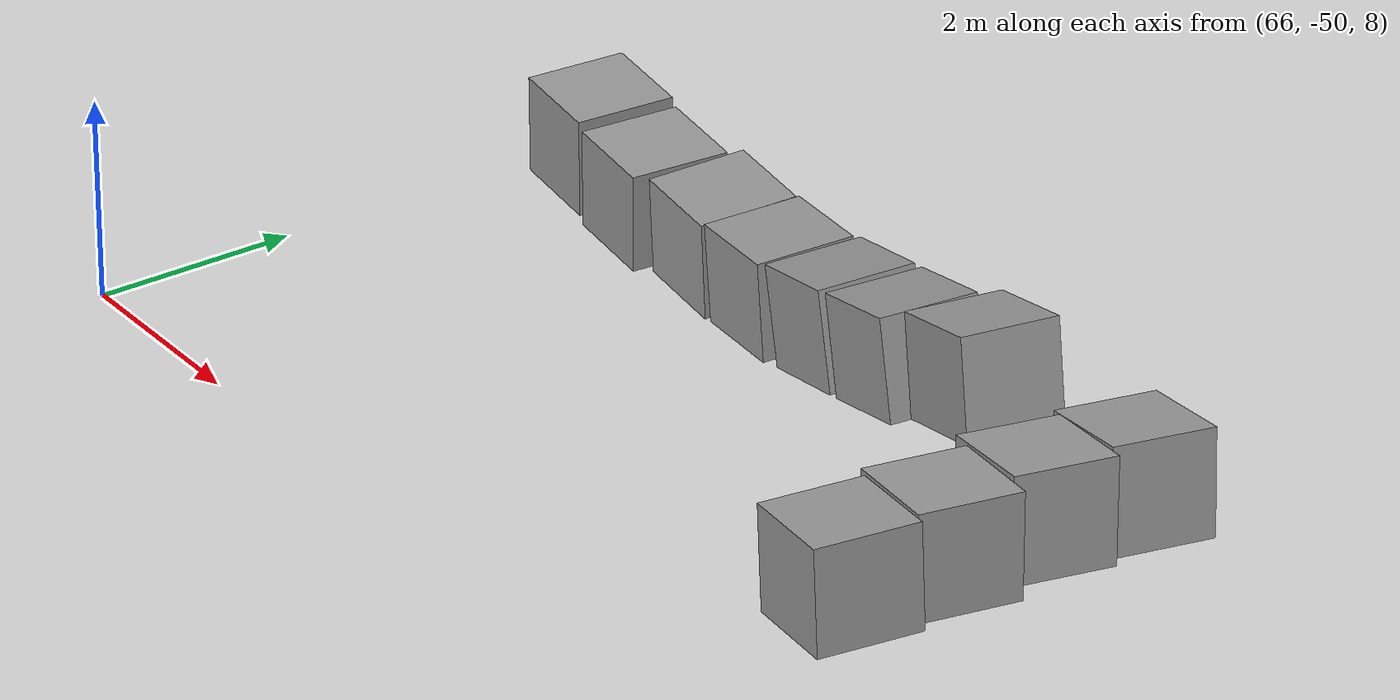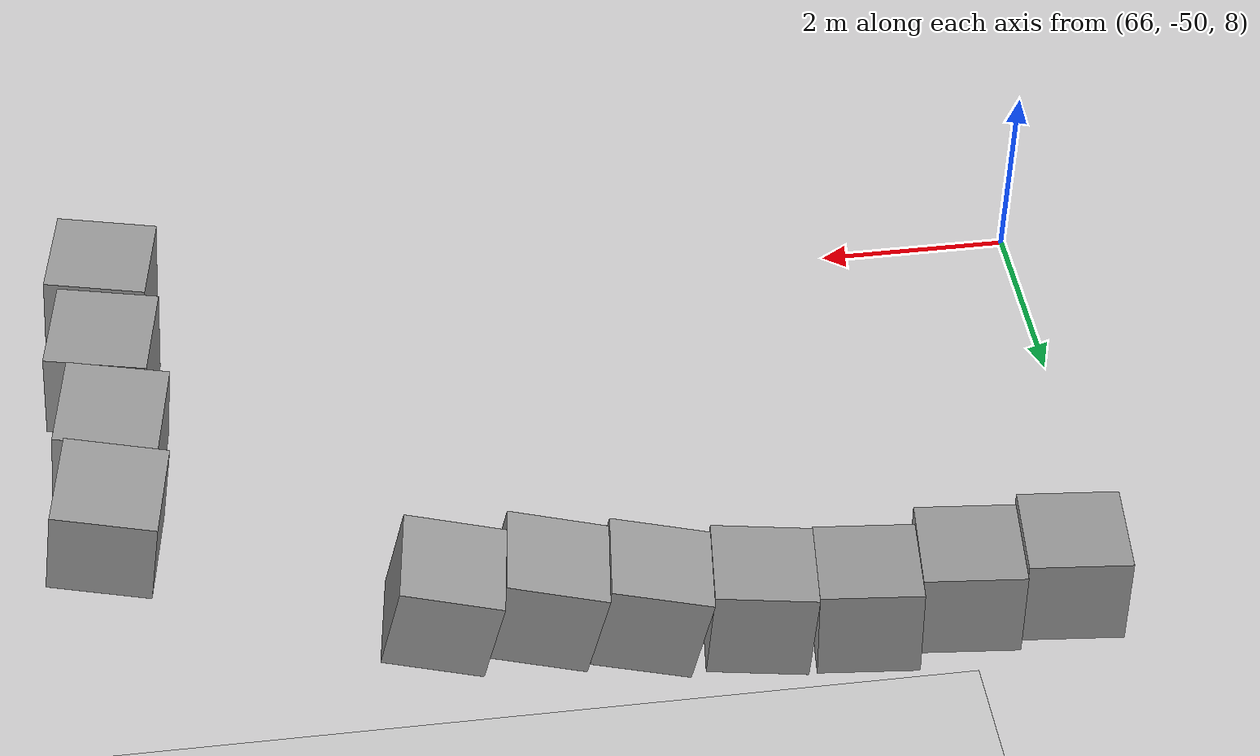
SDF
<sdf version="1.7">
 <world name="default">
  <model name="ground_plane">
   <static>1</static>
   <link name="link">
    <collision name="collision">
     <geometry><plane><normal>0 0 1</normal><size>100 100</size></plane></geometry>
     <surface>
      <contact><collide_bitmask>65535</collide_bitmask></contact>
      <friction><ode><mu>100</mu><mu2>50</mu2></ode></friction>
     </surface>
    </collision>
    <visual name="visual">
     <cast_shadows>0</cast_shadows>
     <geometry><plane><normal>0 0 1</normal><size>100 100</size></plane></geometry>
     <material>
      <script><uri>model://media/materials/scripts/gazebo.material</uri><name>Gazebo/Grey</name></script>
     </material>
    </visual>
   </link>
  </model>
  <model name="unit_box_clone_24_clone_1_clone_clone_2">
   <pose>67.5566 -44.9097 8.24204 1.58541 0.021403 -0.109414</pose>
   <link name="link">
    <inertial>
     <mass>1</mass>
     <inertia>
      <ixx>0.166667</ixx>
      <ixy>0</ixy>
      <ixz>0</ixz>
      <iyy>0.166667</iyy>
      <iyz>0</iyz>
      <izz>0.166667</izz>
     </inertia>
    </inertial>
    <collision name="collision"><geometry><box><size>1 1 1</size></box></geometry></collision>
    <visual name="visual">
     <geometry><box><size>1 1 1</size></box></geometry>
     <material>
      <script><name>Gazebo/Grey</name><uri>model://media/materials/scripts/gazebo.material</uri></script>
     </material>
    </visual>
   </link>
  </model>
  <model name="unit_box_clone_24_clone_1_clone_clone_2_clone">
   <pose>68.5705 -44.8288 8.18506 1.62758 0.021127 -0.109883</pose>
   <link name="link">
    <inertial>
     <mass>1</mass>
     <inertia>
      <ixx>0.166667</ixx>
      <ixy>0</ixy>
      <ixz>0</ixz>
      <iyy>0.166667</iyy>
      <iyz>0</iyz>
      <izz>0.166667</izz>
     </inertia>
    </inertial>
    <collision name="collision"><geometry><box><size>1 1 1</size></box></geometry></collision>
    <visual name="visual">
     <geometry><box><size>1 1 1</size></box></geometry>
     <material>
      <script><name>Gazebo/Grey</name><uri>model://media/materials/scripts/gazebo.material</uri></script>
     </material>
    </visual>
   </link>
  </model>
  <model name="unit_box_clone_24_clone_1_clone_clone_2_clone_0">
   <pose>69.6052 -44.9222 8.20913 1.60972 -0.059546 -0.114181</pose>
   <link name="link">
    <inertial>
     <mass>1</mass>
     <inertia>
      <ixx>0.166667</ixx>
      <ixy>0</ixy>
      <ixz>0</ixz>
      <iyy>0.166667</iyy>
      <iyz>0</iyz>
      <izz>0.166667</izz>
     </inertia>
    </inertial>
    <collision name="collision"><geometry><box><size>1 1 1</size></box></geometry></collision>
    <visual name="visual">
     <geometry><box><size>1 1 1</size></box></geometry>
     <material>
      <script><name>Gazebo/Grey</name><uri>model://media/materials/scripts/gazebo.material</uri></script>
     </material>
    </visual>
   </link>
  </model>
  <model name="unit_box_clone_24_clone_1_clone_clone_2_clone_1">
   <pose>70.6681 -44.974 8.32955 1.59581 -0.20476 -0.117782</pose>
   <link name="link">
    <inertial>
     <mass>1</mass>
     <inertia>
      <ixx>0.166667</ixx>
      <ixy>0</ixy>
      <ixz>0</ixz>
      <iyy>0.166667</iyy>
      <iyz>0</iyz>
      <izz>0.166667</izz>
     </inertia>
    </inertial>
    <collision name="collision"><geometry><box><size>1 1 1</size></box></geometry></collision>
    <visual name="visual">
     <geometry><box><size>1 1 1</size></box></geometry>
     <material>
      <script><name>Gazebo/Grey</name><uri>model://media/materials/scripts/gazebo.material</uri></script>
     </material>
    </visual>
   </link>
  </model>
  <model name="unit_box_clone_24_clone_1_clone_clone_2_clone_2">
   <pose>71.6626 -45.0311 8.49725 1.57728 -0.2205 -0.117894</pose>
   <link name="link">
    <inertial>
     <mass>1</mass>
     <inertia>
      <ixx>0.166667</ixx>
      <ixy>0</ixy>
      <ixz>0</ixz>
      <iyy>0.166667</iyy>
      <iyz>0</iyz>
      <izz>0.166667</izz>
     </inertia>
    </inertial>
    <collision name="collision"><geometry><box><size>1 1 1</size></box></geometry></collision>
    <visual name="visual">
     <geometry><box><size>1 1 1</size></box></geometry>
     <material>
      <script><name>Gazebo/Grey</name><uri>model://media/materials/scripts/gazebo.material</uri></script>
     </material>
    </visual>
   </link>
  </model>
  <model name="unit_box_clone_24_clone_1_clone_clone_2_clone_3">
   <pose>72.6624 -44.9173 8.69937 1.53306 -0.220548 -0.117899</pose>
   <link name="link">
    <inertial>
     <mass>1</mass>
     <inertia>
      <ixx>0.166667</ixx>
      <ixy>0</ixy>
      <ixz>0</ixz>
      <iyy>0.166667</iyy>
      <iyz>0</iyz>
      <izz>0.166667</izz>
     </inertia>
    </inertial>
    <collision name="collision"><geometry><box><size>1 1 1</size></box></geometry></collision>
    <visual name="visual">
     <geometry><box><size>1 1 1</size></box></geometry>
     <material>
      <script><name>Gazebo/Grey</name><uri>model://media/materials/scripts/gazebo.material</uri></script>
     </material>
    </visual>
   </link>
  </model>
  <model name="unit_box_clone_24_clone_1_clone_clone_2_clone_4">
   <pose>66.5614 -44.8346 8.37106 1.59159 0.021405 -0.109414</pose>
   <link name="link">
    <inertial>
     <mass>1</mass>
     <inertia>
      <ixx>0.166667</ixx>
      <ixy>0</ixy>
      <ixz>0</ixz>
      <iyy>0.166667</iyy>
      <iyz>0</iyz>
      <izz>0.166667</izz>
     </inertia>
    </inertial>
    <collision name="collision"><geometry><box><size>1 1 1</size></box></geometry></collision>
    <visual name="visual">
     <geometry><box><size>1 1 1</size></box></geometry>
     <material>
      <script><name>Gazebo/Grey</name><uri>model://media/materials/scripts/gazebo.material</uri></script>
     </material>
    </visual>
   </link>
  </model>
  <model name="unit_box_clone_24_clone_1_clone_clone_2_clone_6_clone_clone">
   <pose>75.752 -45.6979 9.36092 1.51138 -0.153132 -0.138242</pose>
   <link name="link">
    <inertial>
     <mass>1</mass>
     <inertia>
      <ixx>0.166667</ixx>
      <ixy>0</ixy>
      <ixz>0</ixz>
      <iyy>0.166667</iyy>
      <iyz>0</iyz>
      <izz>0.166667</izz>
     </inertia>
    </inertial>
    <collision name="collision"><geometry><box><size>1 1 1</size></box></geometry></collision>
    <visual name="visual">
     <geometry><box><size>1 1 1</size></box></geometry>
     <material>
      <script><name>Gazebo/Grey</name><uri>model://media/materials/scripts/gazebo.material</uri></script>
     </material>
    </visual>
   </link>
  </model>
  <model name="unit_box_clone_24_clone_1_clone_clone_2_clone_6_clone_clone_0">
   <pose>75.6965 -46.6991 9.41452 1.51168 -0.114445 -0.140567</pose>
   <link name="link">
    <inertial>
     <mass>1</mass>
     <inertia>
      <ixx>0.166667</ixx>
      <ixy>0</ixy>
      <ixz>0</ixz>
      <iyy>0.166667</iyy>
      <iyz>0</iyz>
      <izz>0.166667</izz>
     </inertia>
    </inertial>
    <collision name="collision"><geometry><box><size>1 1 1</size></box></geometry></collision>
    <visual name="visual">
     <geometry><box><size>1 1 1</size></box></geometry>
     <material>
      <script><name>Gazebo/Grey</name><uri>model://media/materials/scripts/gazebo.material</uri></script>
     </material>
    </visual>
   </link>
  </model>
  <model name="unit_box_clone_24_clone_1_clone_clone_2_clone_6_clone_clone_1">
   <pose>75.7576 -47.7301 9.46476 1.53224 -0.081617 -0.146055</pose>
   <link name="link">
    <inertial>
     <mass>1</mass>
     <inertia>
      <ixx>0.166667</ixx>
      <ixy>0</ixy>
      <ixz>0</ixz>
      <iyy>0.166667</iyy>
      <iyz>0</iyz>
      <izz>0.166667</izz>
     </inertia>
    </inertial>
    <collision name="collision"><geometry><box><size>1 1 1</size></box></geometry></collision>
    <visual name="visual">
     <geometry><box><size>1 1 1</size></box></geometry>
     <material>
      <script><name>Gazebo/Grey</name><uri>model://media/materials/scripts/gazebo.material</uri></script>
     </material>
    </visual>
   </link>
  </model>
  <model name="unit_box_clone_24_clone_1_clone_clone_2_clone_6_clone_clone_2">
   <pose>75.7504 -48.7588 9.50329 1.57108 -0.088453 -0.145796</pose>
   <link name="link">
    <inertial>
     <mass>1</mass>
     <inertia>
      <ixx>0.166667</ixx>
      <ixy>0</ixy>
      <ixz>0</ixz>
      <iyy>0.166667</iyy>
      <iyz>0</iyz>
      <izz>0.166667</izz>
     </inertia>
    </inertial>
    <collision name="collision"><geometry><box><size>1 1 1</size></box></geometry></collision>
    <visual name="visual">
     <geometry><box><size>1 1 1</size></box></geometry>
     <material>
      <script><name>Gazebo/Grey</name><uri>model://media/materials/scripts/gazebo.material</uri></script>
     </material>
    </visual>
   </link>
  </model>
 </world>
</sdf>
